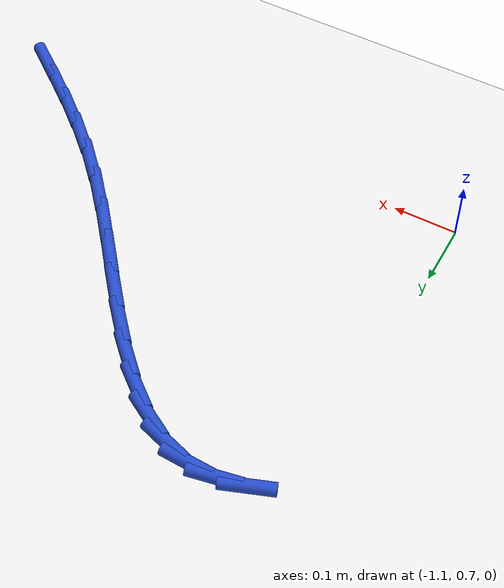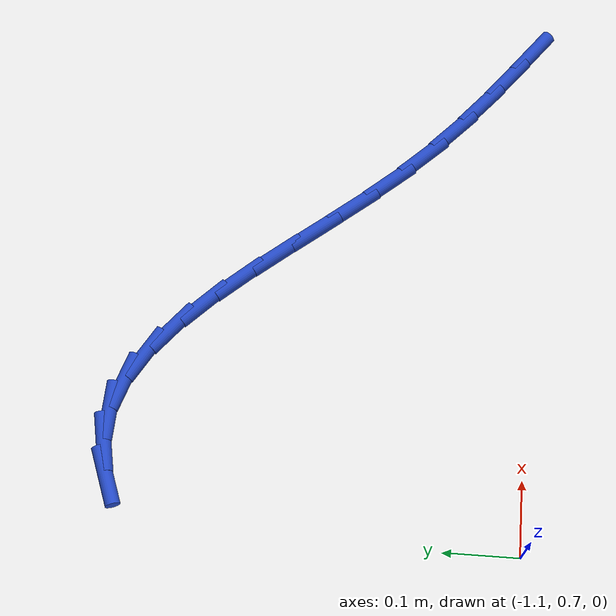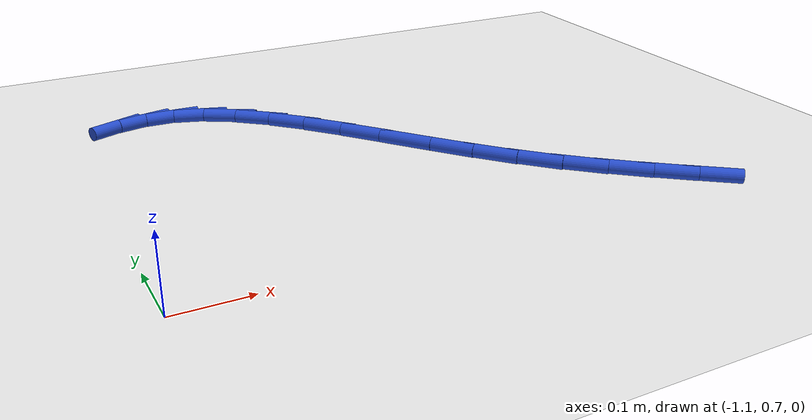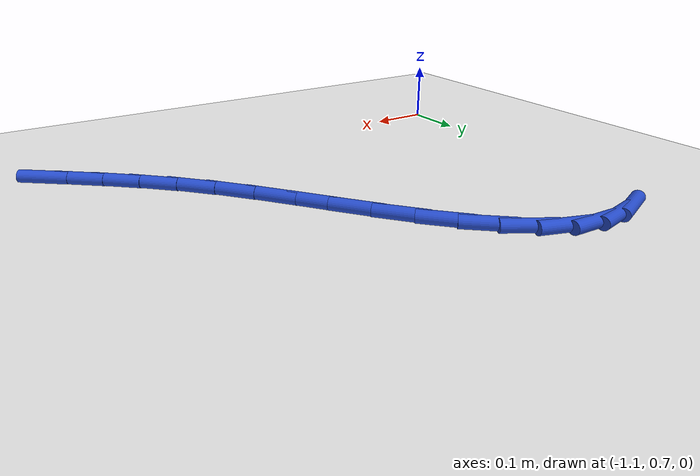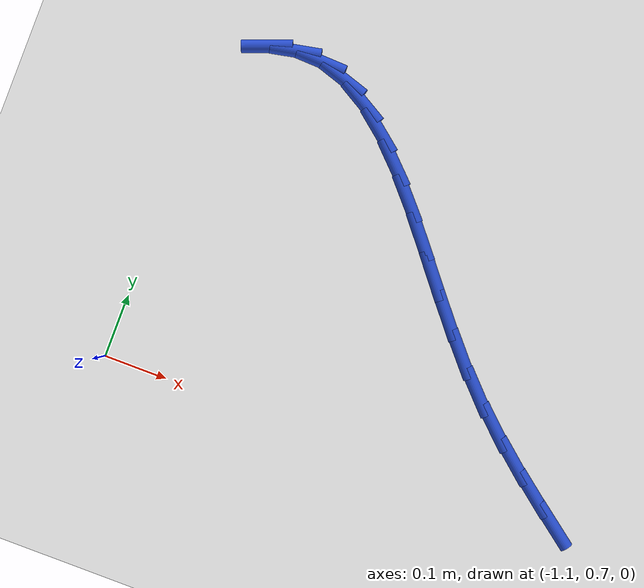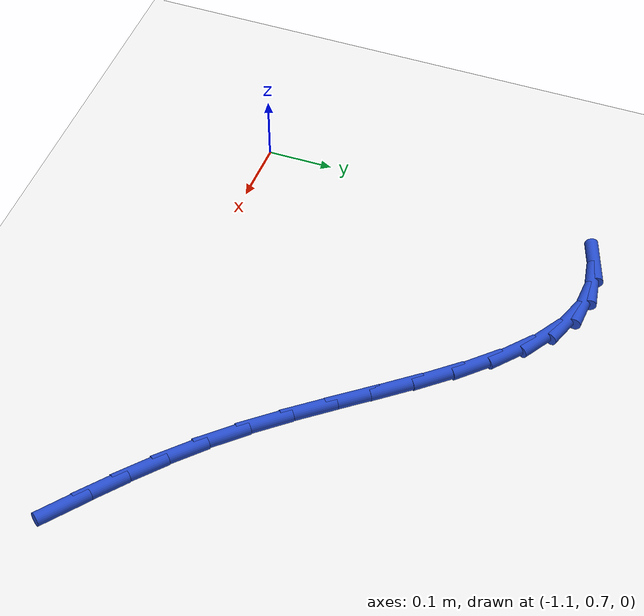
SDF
<sdf version="1.6">
 <world name="default">
  <model name="ground_plane">
   <static>1</static>
   <link name="link">
    <collision name="collision">
     <geometry><plane><normal>0 0 1</normal><size>100 100</size></plane></geometry>
     <surface><friction><ode><mu>100</mu><mu2>50</mu2></ode></friction></surface>
    </collision>
    <visual name="visual">
     <cast_shadows>0</cast_shadows>
     <geometry><plane><normal>0 0 1</normal><size>100 100</size></plane></geometry>
     <material>
      <script><uri>file://media/materials/scripts/gazebo.material</uri><name>Gazebo/WhiteGlow</name></script>
     </material>
    </visual>
   </link>
  </model>
  <model name="line">
   <link name="link_15">
    <pose>-0.36430142384610165 0.6977651511555754 0.01 0 1.57 -0.6530706679053789</pose>
    <collision name="collision">
     <geometry><cylinder><radius>0.01</radius><length>0.08</length></cylinder></geometry>
    </collision>
    <visual name="visual">
     <material>
      <script><name>Gazebo/Blue</name><uri>file://media/materials/scripts/gazebo.material</uri></script>
     </material>
     <geometry><cylinder><radius>0.01</radius><length>0.08</length></cylinder></geometry>
    </visual>
   </link>
   <link name="link_16">
    <pose>-0.4096384723225896 0.73245075839851 0.01 0 1.57 -0.672656504097091</pose>
    <collision name="collision">
     <geometry><cylinder><radius>0.01</radius><length>0.08</length></cylinder></geometry>
    </collision>
    <visual name="visual">
     <material>
      <script><name>Gazebo/Blue</name><uri>file://media/materials/scripts/gazebo.material</uri></script>
     </material>
     <geometry><cylinder><radius>0.01</radius><length>0.08</length></cylinder></geometry>
    </visual>
   </link>
   <link name="link_17">
    <pose>-0.4551752218954109 0.7687247505808834 0.01 0 1.57 -0.7067561719770623</pose>
    <collision name="collision">
     <geometry><cylinder><radius>0.01</radius><length>0.08</length></cylinder></geometry>
    </collision>
    <visual name="visual">
     <material>
      <script><name>Gazebo/Blue</name><uri>file://media/materials/scripts/gazebo.material</uri></script>
     </material>
     <geometry><cylinder><radius>0.01</radius><length>0.08</length></cylinder></geometry>
    </visual>
   </link>
   <link name="link_18">
    <pose>-0.5003717585153563 0.8073182537065258 0.01 0 1.57 -0.7543210097953399</pose>
    <collision name="collision">
     <geometry><cylinder><radius>0.01</radius><length>0.08</length></cylinder></geometry>
    </collision>
    <visual name="visual">
     <material>
      <script><name>Gazebo/Blue</name><uri>file://media/materials/scripts/gazebo.material</uri></script>
     </material>
     <geometry><cylinder><radius>0.01</radius><length>0.08</length></cylinder></geometry>
    </visual>
   </link>
   <link name="link_19">
    <pose>-0.544688168133217 0.8489623937792667 0.01 0 1.57 -0.8128451427059232</pose>
    <collision name="collision">
     <geometry><cylinder><radius>0.01</radius><length>0.08</length></cylinder></geometry>
    </collision>
    <visual name="visual">
     <material>
      <script><name>Gazebo/Blue</name><uri>file://media/materials/scripts/gazebo.material</uri></script>
     </material>
     <geometry><cylinder><radius>0.01</radius><length>0.08</length></cylinder></geometry>
    </visual>
   </link>
   <link name="link_20">
    <pose>-0.5876124468479429 0.8943100798631176 0.01 0 1.57 -0.8627186431373917</pose>
    <collision name="collision">
     <geometry><cylinder><radius>0.01</radius><length>0.08</length></cylinder></geometry>
    </collision>
    <visual name="visual">
     <material>
      <script><name>Gazebo/Blue</name><uri>file://media/materials/scripts/gazebo.material</uri></script>
     </material>
     <geometry><cylinder><radius>0.01</radius><length>0.08</length></cylinder></geometry>
    </visual>
   </link>
   <link name="link_21">
    <pose>-0.6290844676318844 0.9427478563288493 0.01 0 1.57 -0.8909976443064556</pose>
    <collision name="collision">
     <geometry><cylinder><radius>0.01</radius><length>0.08</length></cylinder></geometry>
    </collision>
    <visual name="visual">
     <material>
      <script><name>Gazebo/Blue</name><uri>file://media/materials/scripts/gazebo.material</uri></script>
     </material>
     <geometry><cylinder><radius>0.01</radius><length>0.08</length></cylinder></geometry>
    </visual>
   </link>
   <link name="link_22">
    <pose>-0.6694103578271645 0.9926358560844478 0.01 0 1.57 -0.8989914196569007</pose>
    <collision name="collision">
     <geometry><cylinder><radius>0.01</radius><length>0.08</length></cylinder></geometry>
    </collision>
    <visual name="visual">
     <material>
      <script><name>Gazebo/Blue</name><uri>file://media/materials/scripts/gazebo.material</uri></script>
     </material>
     <geometry><cylinder><radius>0.01</radius><length>0.08</length></cylinder></geometry>
    </visual>
   </link>
   <link name="link_23">
    <pose>-0.7089067931556087 1.0423046506763591 0.01 0 1.57 -0.8864374029209041</pose>
    <collision name="collision">
     <geometry><cylinder><radius>0.01</radius><length>0.08</length></cylinder></geometry>
    </collision>
    <visual name="visual">
     <material>
      <script><name>Gazebo/Blue</name><uri>file://media/materials/scripts/gazebo.material</uri></script>
     </material>
     <geometry><cylinder><radius>0.01</radius><length>0.08</length></cylinder></geometry>
    </visual>
   </link>
   <link name="link_24">
    <pose>-0.7478904493390426 1.0900848116510298 0.01 0 1.57 -0.8507737128564961</pose>
    <collision name="collision">
     <geometry><cylinder><radius>0.01</radius><length>0.08</length></cylinder></geometry>
    </collision>
    <visual name="visual">
     <material>
      <script><name>Gazebo/Blue</name><uri>file://media/materials/scripts/gazebo.material</uri></script>
     </material>
     <geometry><cylinder><radius>0.01</radius><length>0.08</length></cylinder></geometry>
    </visual>
   </link>
   <link name="link_25">
    <pose>-0.7866780020992914 1.1343069105549048 0.01 0 1.57 -0.7865083078210264</pose>
    <collision name="collision">
     <geometry><cylinder><radius>0.01</radius><length>0.08</length></cylinder></geometry>
    </collision>
    <visual name="visual">
     <material>
      <script><name>Gazebo/Blue</name><uri>file://media/materials/scripts/gazebo.material</uri></script>
     </material>
     <geometry><cylinder><radius>0.01</radius><length>0.08</length></cylinder></geometry>
    </visual>
   </link>
   <link name="link_26">
    <pose>-0.8255861271581814 1.173301518934431 0.01 0 1.57 -0.6842970532903205</pose>
    <collision name="collision">
     <geometry><cylinder><radius>0.01</radius><length>0.08</length></cylinder></geometry>
    </collision>
    <visual name="visual">
     <material>
      <script><name>Gazebo/Blue</name><uri>file://media/materials/scripts/gazebo.material</uri></script>
     </material>
     <geometry><cylinder><radius>0.01</radius><length>0.08</length></cylinder></geometry>
    </visual>
   </link>
   <link name="link_27">
    <pose>-0.8649315002375368 1.2053992083360536 0.01 0 1.57 -0.5306770085476419</pose>
    <collision name="collision">
     <geometry><cylinder><radius>0.01</radius><length>0.08</length></cylinder></geometry>
    </collision>
    <visual name="visual">
     <material>
      <script><name>Gazebo/Blue</name><uri>file://media/materials/scripts/gazebo.material</uri></script>
     </material>
     <geometry><cylinder><radius>0.01</radius><length>0.08</length></cylinder></geometry>
    </visual>
   </link>
   <link name="link_28">
    <pose>-0.9050307970591848 1.2289305503062193 0.01 0 1.57 -0.3123710872037136</pose>
    <collision name="collision">
     <geometry><cylinder><radius>0.01</radius><length>0.08</length></cylinder></geometry>
    </collision>
    <visual name="visual">
     <material>
      <script><name>Gazebo/Blue</name><uri>file://media/materials/scripts/gazebo.material</uri></script>
     </material>
     <geometry><cylinder><radius>0.01</radius><length>0.08</length></cylinder></geometry>
    </visual>
   </link>
   <link name="link_29">
    <pose>-0.9462006933449498 1.242226116391374 0.01 0 1.57 -0.042122471340184715</pose>
    <collision name="collision">
     <geometry><cylinder><radius>0.01</radius><length>0.08</length></cylinder></geometry>
    </collision>
    <visual name="visual">
     <material>
      <script><name>Gazebo/Blue</name><uri>file://media/materials/scripts/gazebo.material</uri></script>
     </material>
     <geometry><cylinder><radius>0.01</radius><length>0.08</length></cylinder></geometry>
    </visual>
   </link>
   <link name="link_30">
    <pose>-0.9887335187002878 1.2440187644672298 0.01 0 1.57 0.19373820513492865</pose>
    <collision name="collision">
     <geometry><cylinder><radius>0.01</radius><length>0.08</length></cylinder></geometry>
    </collision>
    <visual name="visual">
     <material>
      <script><name>Gazebo/Blue</name><uri>file://media/materials/scripts/gazebo.material</uri></script>
     </material>
     <geometry><cylinder><radius>0.01</radius><length>0.08</length></cylinder></geometry>
    </visual>
   </link>
   <link name="link_31">
    <pose>-1.0327802609311045 1.2353768326499275 0.01 0 1.57 0.35962849148796344</pose>
    <collision name="collision">
     <geometry><cylinder><radius>0.01</radius><length>0.08</length></cylinder></geometry>
    </collision>
    <visual name="visual">
     <material>
      <script><name>Gazebo/Blue</name><uri>file://media/materials/scripts/gazebo.material</uri></script>
     </material>
     <geometry><cylinder><radius>0.01</radius><length>0.08</length></cylinder></geometry>
    </visual>
   </link>
  </model>
 </world>
</sdf>
